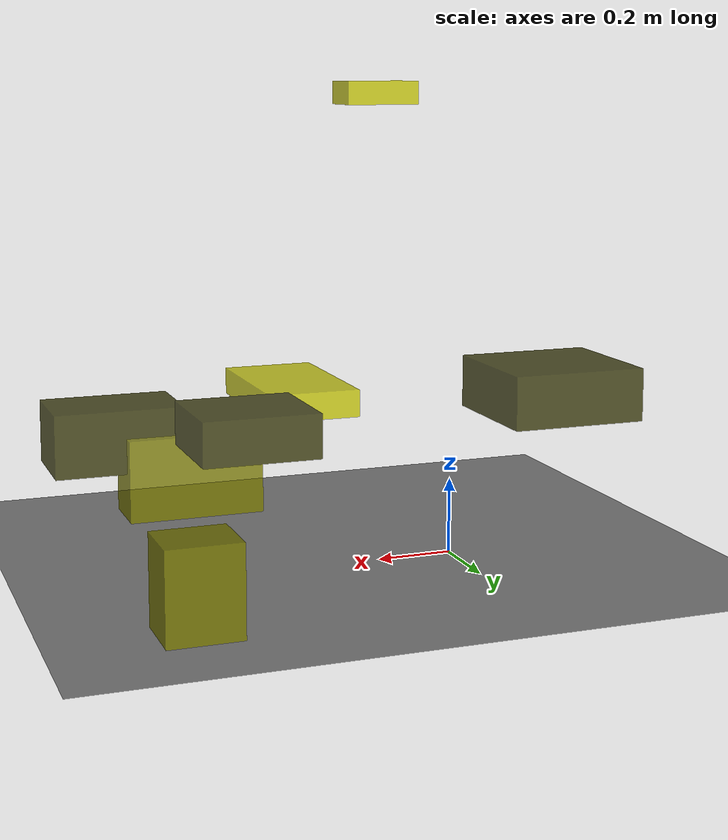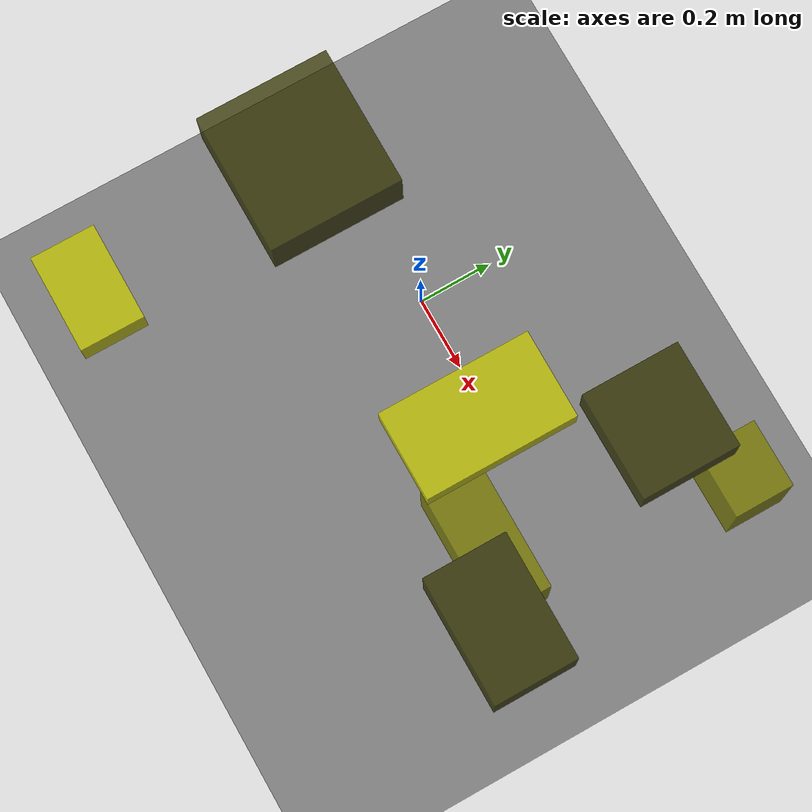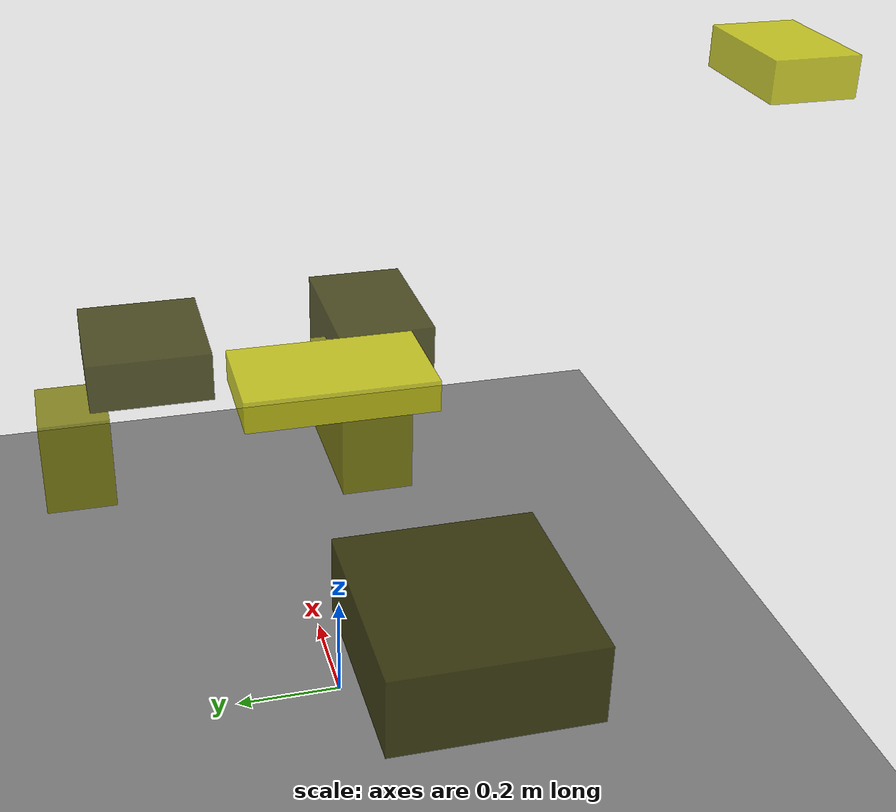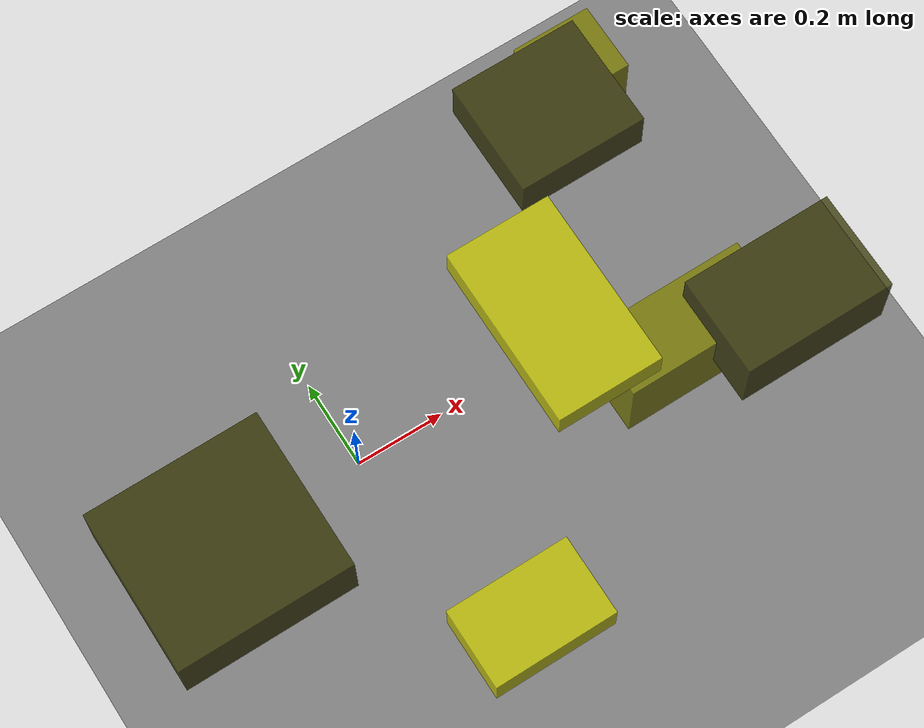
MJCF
<?xml version="1.0"?>
<mujoco model="obstacle_scene">
  <compiler angle="radian" coordinate="local"/>
  <option timestep="0.001" gravity="0 0 -9.81"/>

  <asset>
    <material name="obstacle_mat" rgba="0.8 0.8 0.0 0.8"/>
    <material name="ground_mat" rgba="0.5 0.5 0.5 1"/>
  </asset>

  <worldbody>
    <!-- Ground plane -->
    <geom name="ground" type="plane" size="3 3 0.1" material="ground_mat"/>

    <!-- Obstacles -->
    <body name="obstacle_0" pos="0.847397 -0.263184 0.331003">
      <geom name="obs_0" type="box" size="0.169347 0.111247 0.082652" rgba="0.2 0.2 0.0 0.8"/>
    </body>
    <body name="obstacle_1" pos="0.657820 -0.193539 0.234190">
      <geom name="obs_1" type="box" size="0.175975 0.077742 0.106751" rgba="0.5 0.5 0.0 0.8"/>
    </body>
    <body name="obstacle_2" pos="-0.062577 -0.725305 1.205354">
      <geom name="obs_2" type="box" size="0.110756 0.072041 0.034450" rgba="0.8 0.8 0.0 0.8"/>
    </body>
    <body name="obstacle_3" pos="-0.360196 -0.128864 0.399004">
      <geom name="obs_3" type="box" size="0.188740 0.177713 0.073024" rgba="0.2 0.2 0.0 0.8"/>
    </body>
    <body name="obstacle_4" pos="0.807902 0.445498 0.136189">
      <geom name="obs_4" type="box" size="0.091649 0.079428 0.112593" rgba="0.5 0.5 0.0 0.8"/>
    </body>
    <body name="obstacle_5" pos="0.417131 -0.078913 0.450998">
      <geom name="obs_5" type="box" size="0.116860 0.200246 0.034365" rgba="0.8 0.8 0.0 0.8"/>
    </body>
    <body name="obstacle_6" pos="0.639272 0.282344 0.445334">
      <geom name="obs_6" type="box" size="0.141511 0.128915 0.053167" rgba="0.2 0.2 0.0 0.8"/>
    </body>
  </worldbody>
</mujoco>
